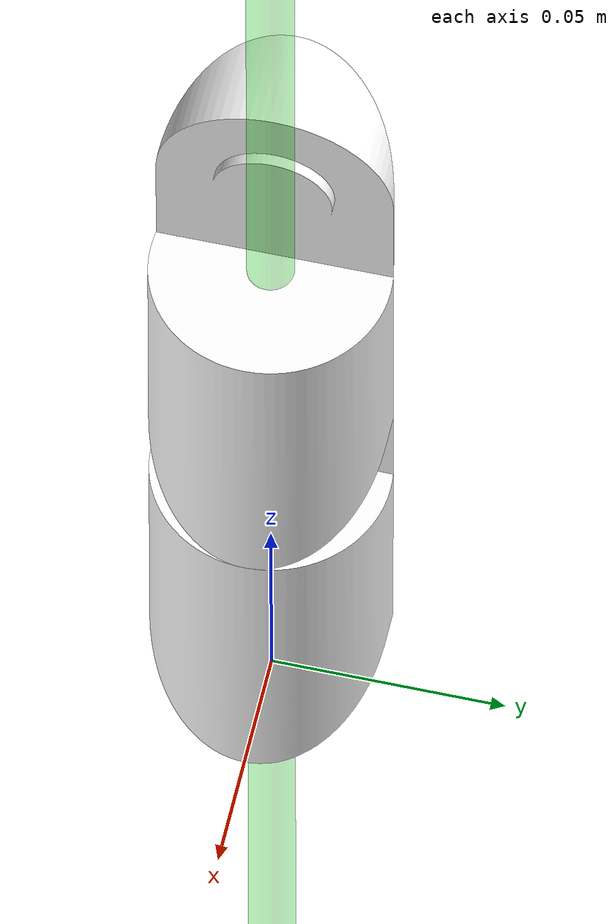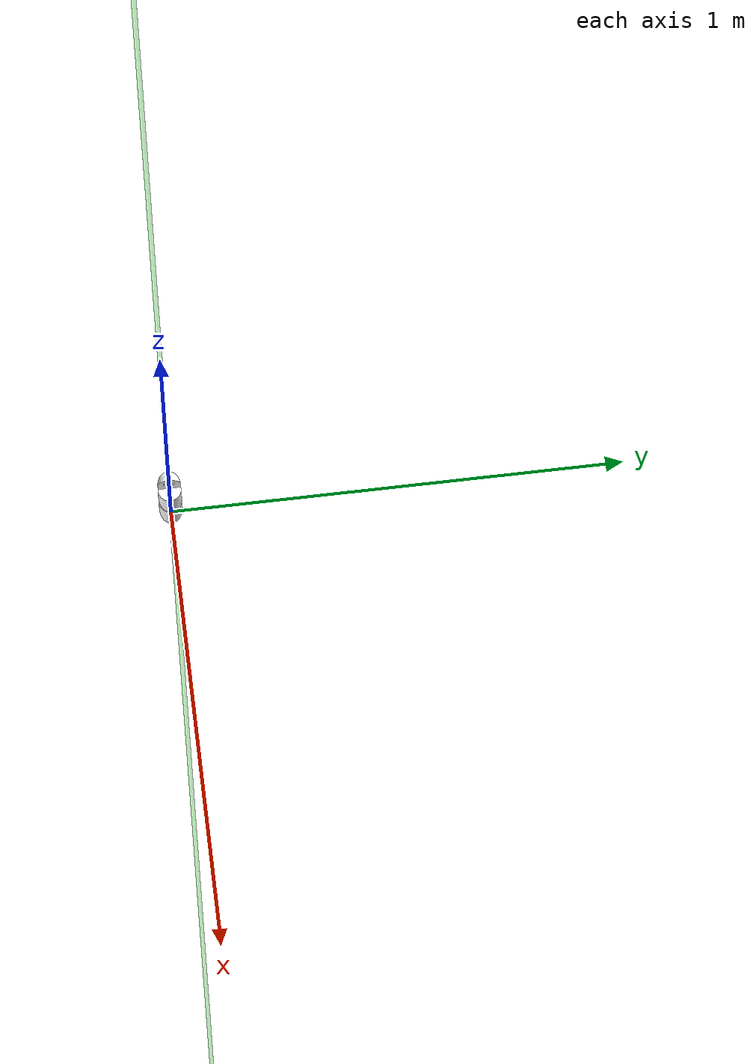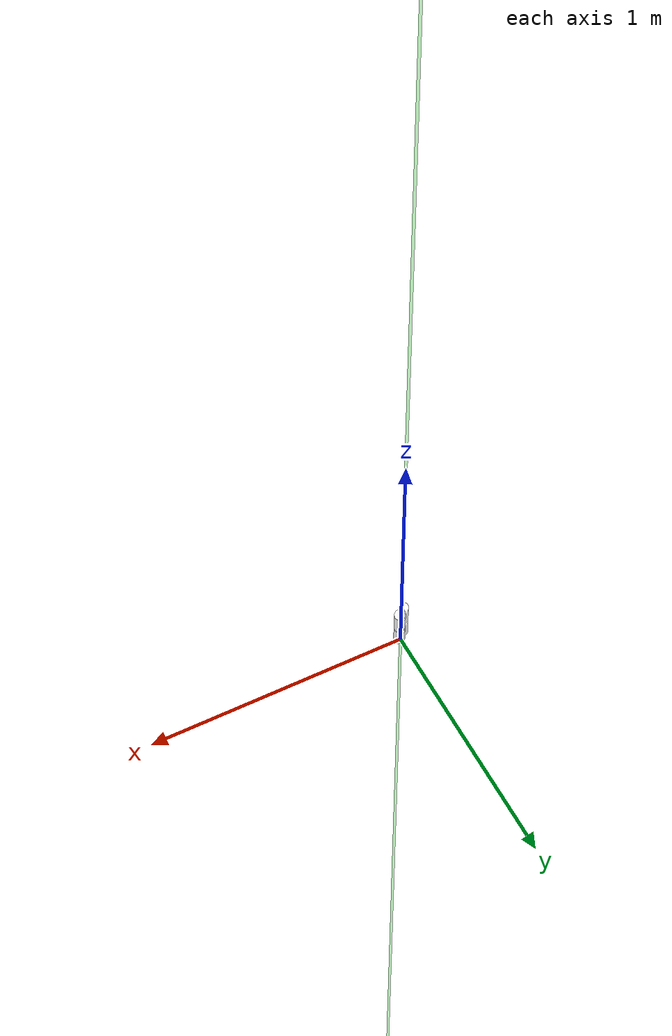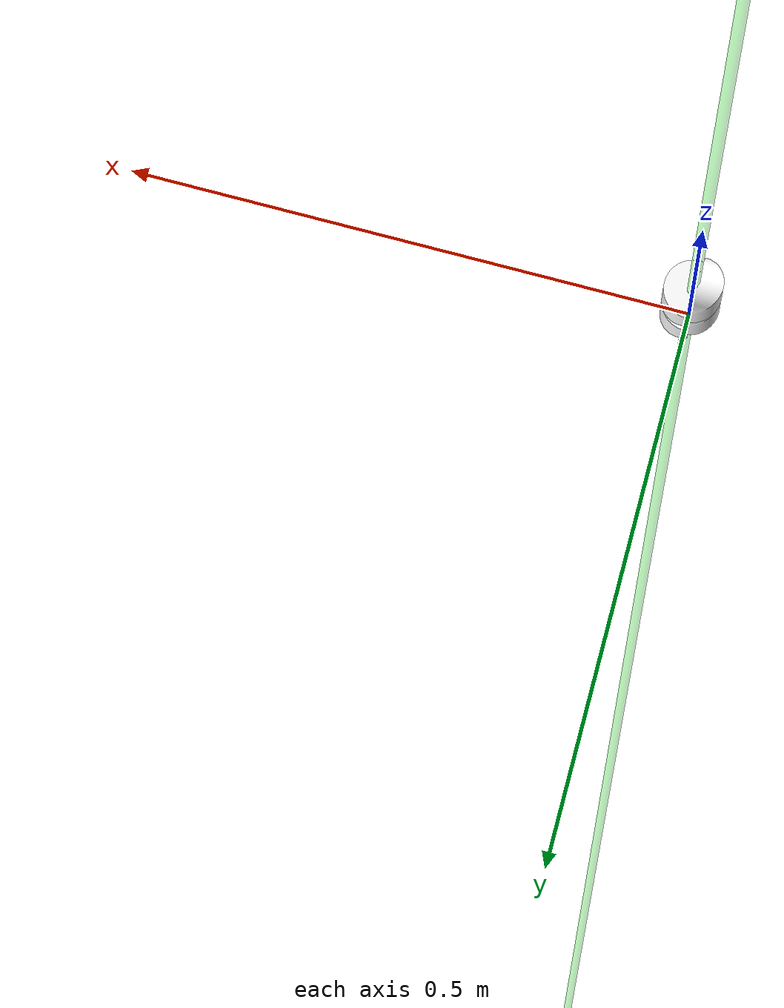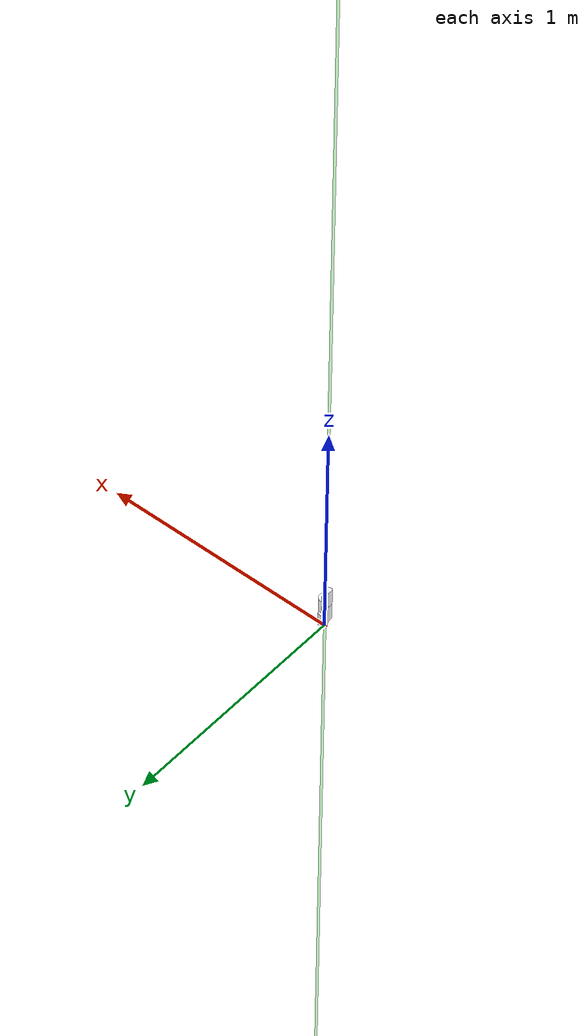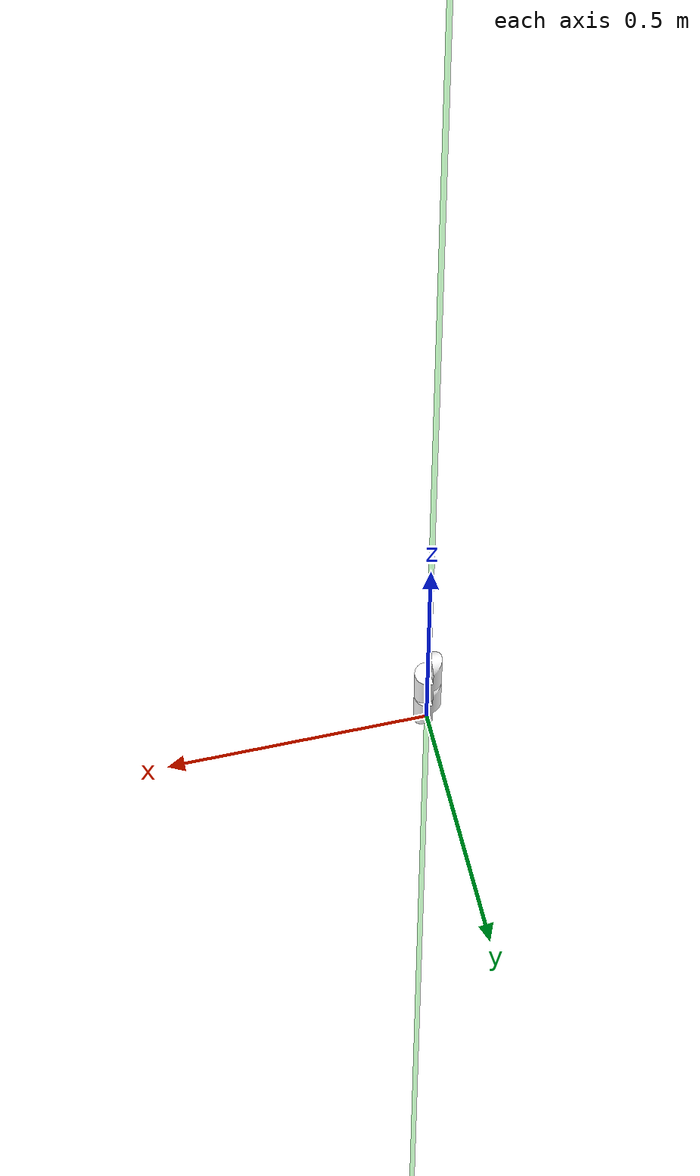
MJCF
<mujoco model="rrgripper">
    <asset>
        <mesh name="link1" file="meshes/rrmanip/link_visual.stl" />
        <mesh name="link1_vis" file="meshes/rrmanip/link_collision.stl" />
        <mesh name="link2" file="meshes/rrmanip/link_2_visual.stl" />
        <mesh name="link2_vis" file="meshes/rrmanip/link_2_collision.stl" />
    </asset>
    <actuator>
        <motor ctrllimited="true" ctrlrange="-80.0 80.0" joint="joint1" name="torq_j1"/>
    </actuator>
    <worldbody>
        <body name="link1" pos="0 0 0">
            <site name="ft_frame" pos="0 0 0" size="0.01 0.01 0.01" rgba="1 0 0 1" type="sphere" group="1"/>
            <site name="grip_site" pos="0 0 0" size="0.01 0.01 0.01" rgba="1 0 0 0.5" type="sphere" group="1"/>
            <site name="grip_site_cylinder" pos="0 0 0" size="0.005 10" rgba="0 1 0 0.3" type="cylinder" group="1"/>
            <inertial pos="0 0 0.0591819" mass="0.156692" diaginertia="0.000178231 0.000180147 4.88221e-05" />
            <geom pos="0 0 0." quat="1 0 0 0" type="mesh" contype="0" conaffinity="0" group="1" mesh="link1_vis" name="link1_visual" rgba="1 1 1 1" />
            <geom pos="0 0 0." quat="1 0 0 0" type="mesh" mesh="link1"  group="0" name="link1_collider"/>
            <body name="link2" pos="0 0 0.0762" quat="1 0 0 0">
                <inertial pos="0 0 0.0591819" mass="0.156692" diaginertia="0.000178231 0.000180147 4.88221e-05" />
                <joint name="joint1" pos="0 0 0" axis="1 0 0" type="hinge" limited="true" range="-3.14 3.14" damping="100" armature="1.0" frictionloss="1.0"/>
                <geom pos="0 0 0." quat="1 0 0 0" type="mesh" contype="0" conaffinity="0" group="1" mesh="link1_vis" name="link_visual" rgba="1 1 1 1" />
                <geom pos="0 0 0." quat="1 0 0 0" type="mesh" mesh="link1"  group="0" name="link_collider"/>
            </body>
        </body>
    </worldbody>
    <sensor>
        <force name="force_ee" site="ft_frame"/>
        <torque name="torque_ee" site="ft_frame"/>
    </sensor>
</mujoco>
